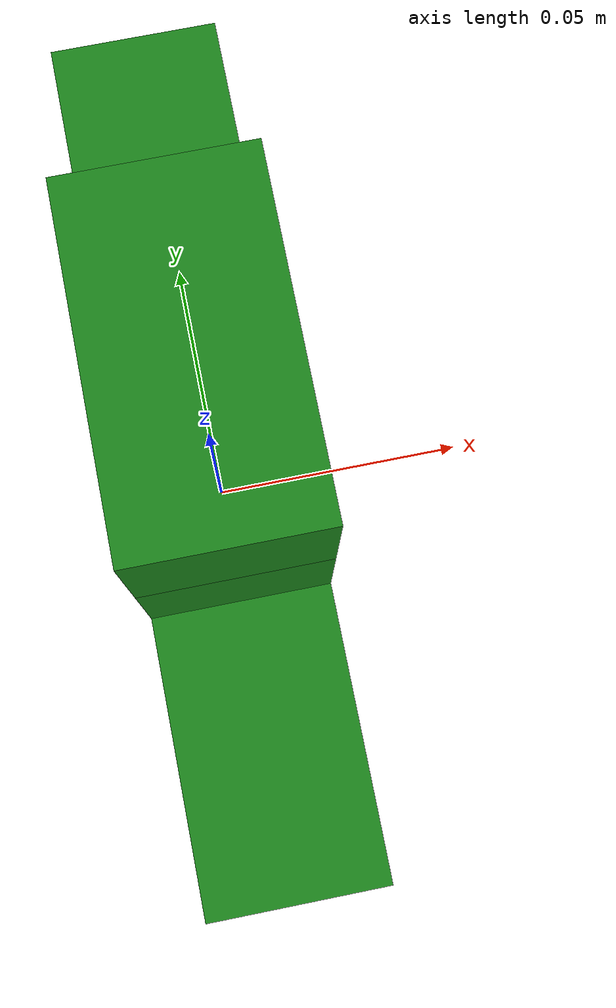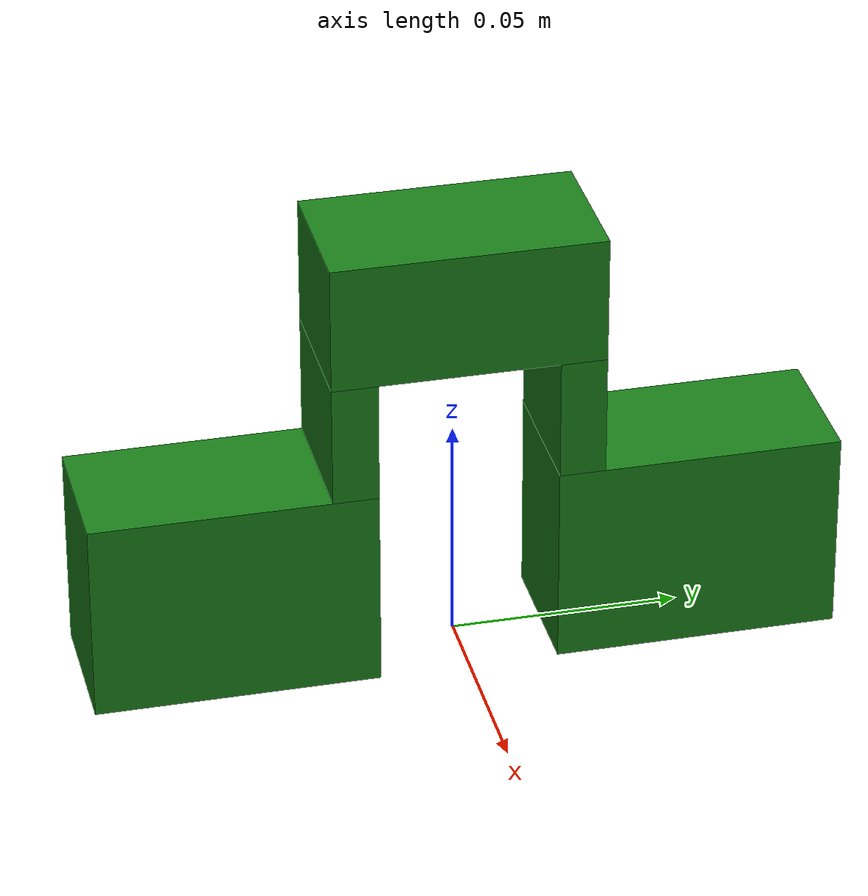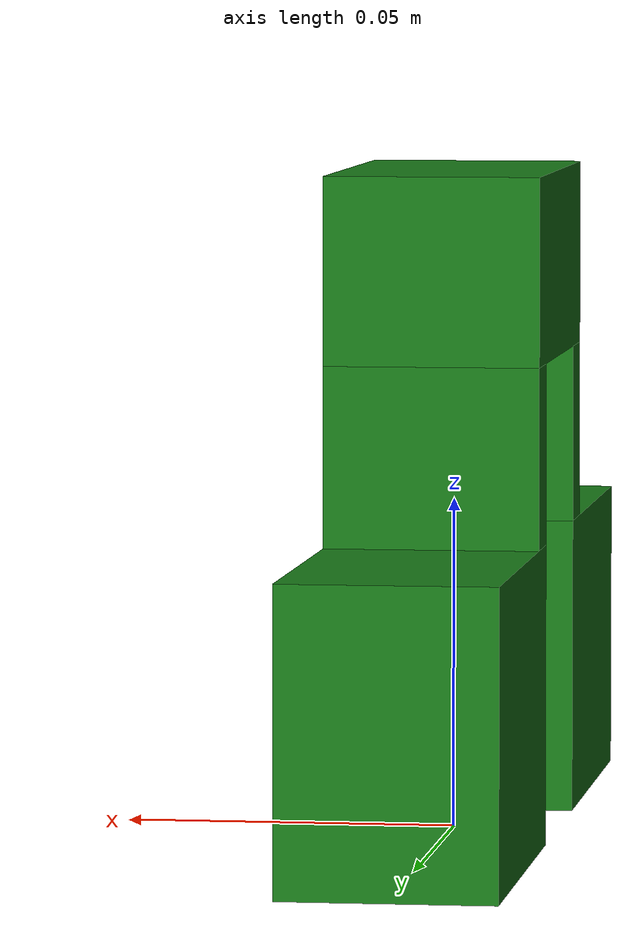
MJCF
<mujoco model="peg_v1_4">

  <compiler angle="radian" autolimits="true" inertiafromgeom="true"/>

  <default>
    <default class="peg_v1_4">
      <default class="vis">
        <geom contype="0" conaffinity="0" group="2" density="0" material="peg_v1_4_mat"/>
      </default>
      <default class="col">
        <geom contype="1" conaffinity="1" group="3" priority="0"
              friction="0.3 0.02 0.001" solref="0.002 1" solimp="0.995 0.995 0.0001"
              condim="6" rgba="0.1 0.5 0.1 0.5"/>
      </default>
    </default>
  </default>

  <asset><material name="peg_v1_4_mat" rgba="0.1 0.5 0.1 1.0"/></asset>

  <worldbody>
    <body name="peg_v1_4" pos="0 0 0" childclass="peg_v1_4">
      <freejoint name="peg_v1_4_joint"/>
      <geom name="peg_v1_4_vis_foot_neg" type="box" class="vis" pos="0.000000 -0.050500 0.022500" size="0.016000 0.031000 0.022500"/>
      <geom name="peg_v1_4_vis_foot_pos" type="box" class="vis" pos="0.000000 0.050500 0.022500" size="0.016000 0.031000 0.022500"/>
      <geom name="peg_v1_4_vis_arch_neg" type="box" class="vis" pos="0.000000 -0.024500 0.058500" size="0.016000 0.005000 0.013500"/>
      <geom name="peg_v1_4_vis_arch_pos" type="box" class="vis" pos="0.000000 0.024500 0.058500" size="0.016000 0.005000 0.013500"/>
      <geom name="peg_v1_4_vis_top" type="box" class="vis" pos="0.000000 0.000000 0.086000" size="0.016000 0.029500 0.014000"/>
      <geom name="peg_v1_4_col_foot_neg" type="box" class="col" pos="0.000000 -0.050500 0.022500" size="0.016000 0.031000 0.022500"/>
      <geom name="peg_v1_4_col_foot_pos" type="box" class="col" pos="0.000000 0.050500 0.022500" size="0.016000 0.031000 0.022500"/>
      <geom name="peg_v1_4_col_arch_neg" type="box" class="col" pos="0.000000 -0.024500 0.058500" size="0.016000 0.005000 0.013500"/>
      <geom name="peg_v1_4_col_arch_pos" type="box" class="col" pos="0.000000 0.024500 0.058500" size="0.016000 0.005000 0.013500"/>
      <geom name="peg_v1_4_col_top" type="box" class="col" pos="0.000000 0.000000 0.086000" size="0.016000 0.029500 0.014000"/>
    </body>
  </worldbody>
</mujoco>
